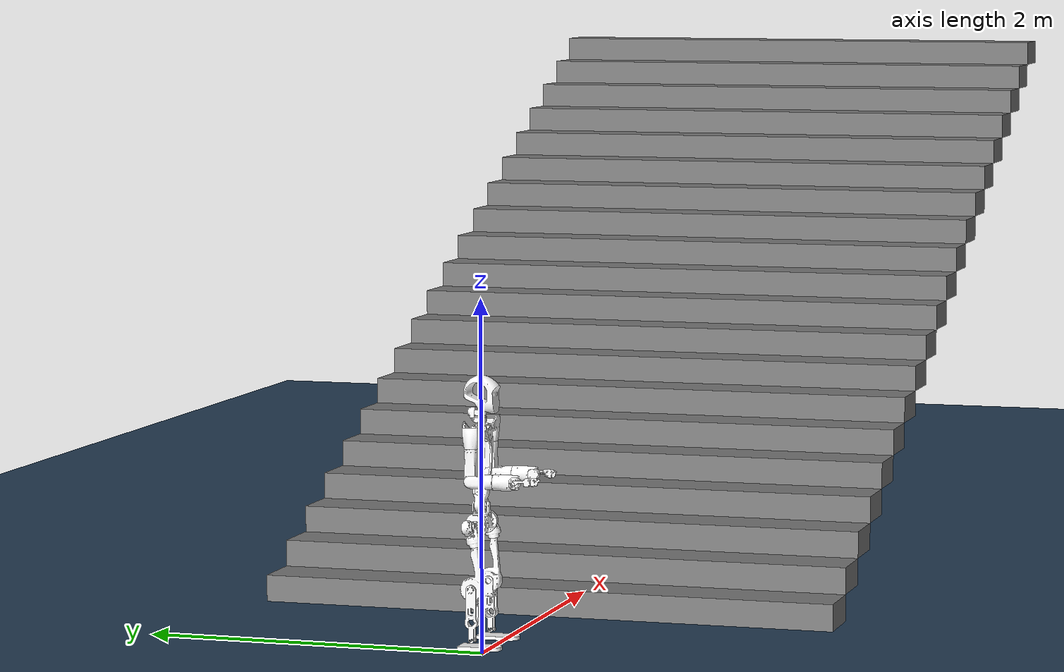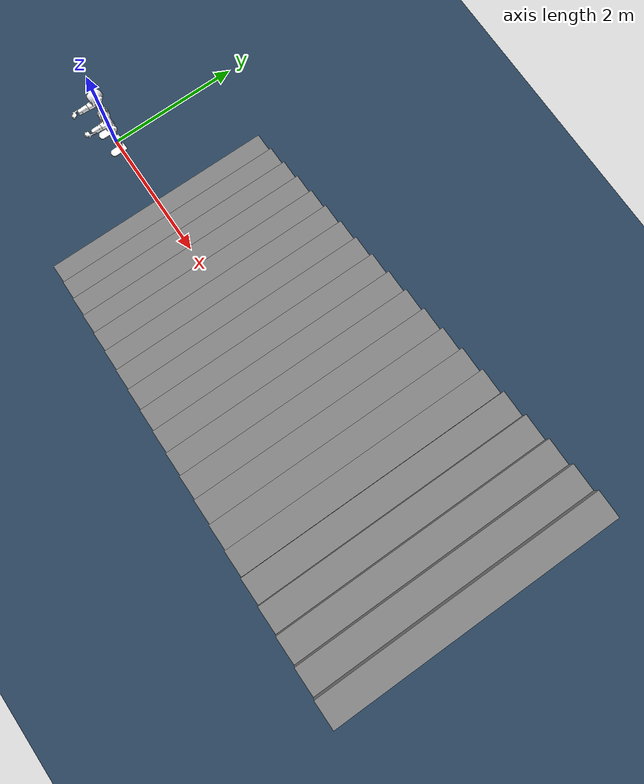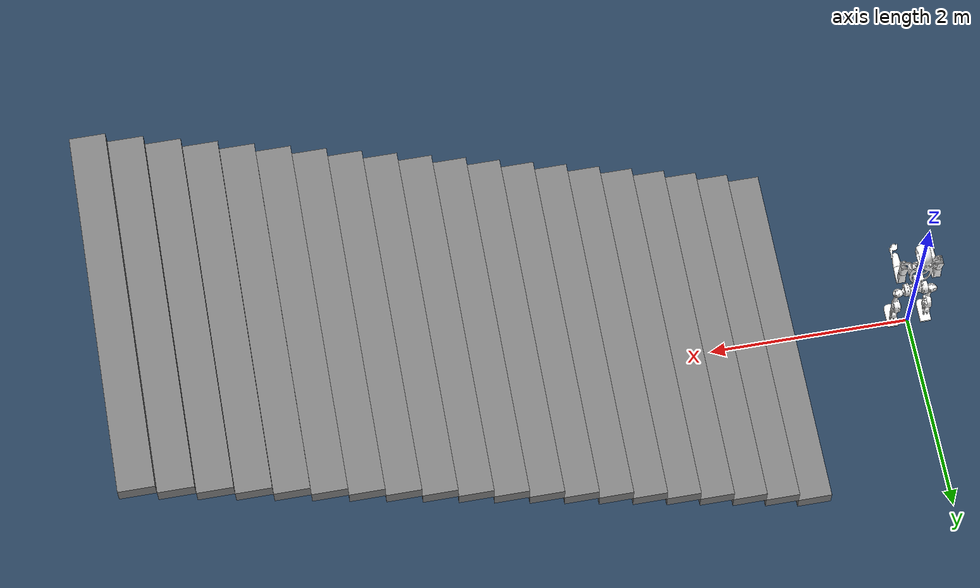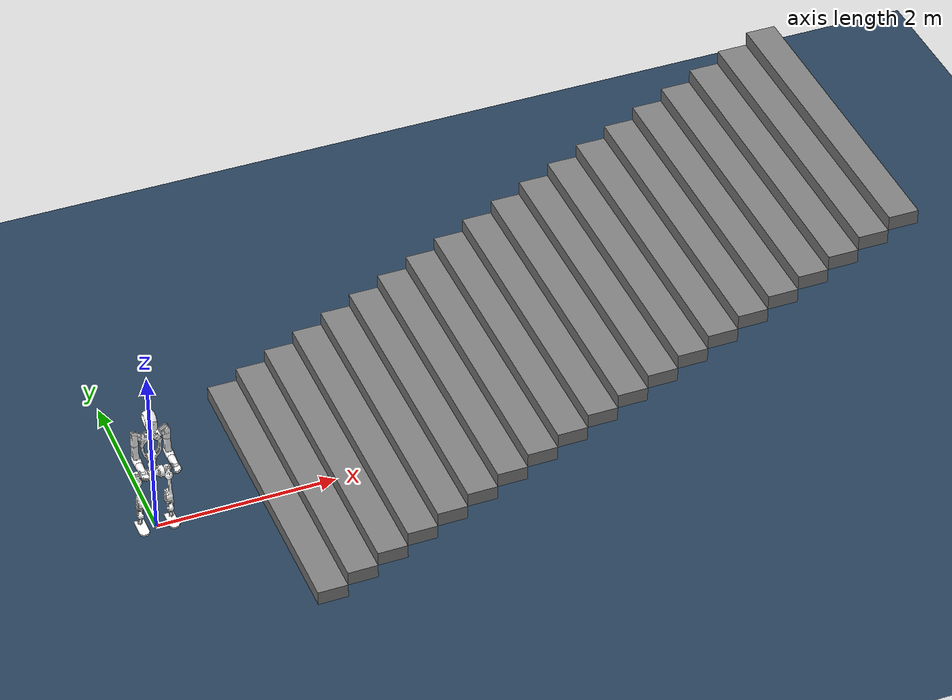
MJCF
<?xml version="1.0" encoding="utf-8"?>
<mujoco model="Taks_T1 scene">
  <include file="Taks_T1.xml" />
  <statistic center="1.0 0.7 1.0" extent="0.8" />

  <visual>
    <headlight diffuse="0.6 0.6 0.6" ambient="0.1 0.1 0.1" specular="0.9 0.9 0.9" />
    <rgba haze="0.15 0.25 0.35 1" />
    <global azimuth="-140" elevation="-20" />
  </visual>

  <asset>
    <texture type="skybox" builtin="flat" rgb1="0 0 0" rgb2="0 0 0" width="512" height="3072" />
    <texture type="2d" name="groundplane" builtin="checker" mark="edge" rgb1="0.2 0.3 0.4" rgb2="0.1 0.2 0.3" markrgb="0.8 0.8 0.8" width="300" height="300" />
    <material name="groundplane" texture="groundplane" texuniform="true" texrepeat="5 5" reflectance="0.2" />
  </asset>

  <worldbody>
    <light pos="1 0 3.5" dir="0 0 -1" directional="true" />
    <geom name="floor" size="0 0 0.05" type="plane" material="groundplane" />
    <geom pos="1.33 0.0 0.08" type="box" size="0.165 1.75 0.08" quat="1.0 0.0 0.0 0.0" /><geom pos="1.6600000000000001 0.0 0.24" type="box" size="0.165 1.75 0.08" quat="1.0 0.0 0.0 0.0" /><geom pos="1.99 0.0 0.4" type="box" size="0.165 1.75 0.08" quat="1.0 0.0 0.0 0.0" /><geom pos="2.3200000000000003 0.0 0.56" type="box" size="0.165 1.75 0.08" quat="1.0 0.0 0.0 0.0" /><geom pos="2.6500000000000004 0.0 0.7200000000000001" type="box" size="0.165 1.75 0.08" quat="1.0 0.0 0.0 0.0" /><geom pos="2.9800000000000004 0.0 0.8800000000000001" type="box" size="0.165 1.75 0.08" quat="1.0 0.0 0.0 0.0" /><geom pos="3.31 0.0 1.04" type="box" size="0.165 1.75 0.08" quat="1.0 0.0 0.0 0.0" /><geom pos="3.64 0.0 1.2" type="box" size="0.165 1.75 0.08" quat="1.0 0.0 0.0 0.0" /><geom pos="3.97 0.0 1.3599999999999999" type="box" size="0.165 1.75 0.08" quat="1.0 0.0 0.0 0.0" /><geom pos="4.300000000000001 0.0 1.5199999999999998" type="box" size="0.165 1.75 0.08" quat="1.0 0.0 0.0 0.0" /><geom pos="4.630000000000001 0.0 1.6799999999999997" type="box" size="0.165 1.75 0.08" quat="1.0 0.0 0.0 0.0" /><geom pos="4.960000000000001 0.0 1.8399999999999996" type="box" size="0.165 1.75 0.08" quat="1.0 0.0 0.0 0.0" /><geom pos="5.29 0.0 1.9999999999999996" type="box" size="0.165 1.75 0.08" quat="1.0 0.0 0.0 0.0" /><geom pos="5.62 0.0 2.1599999999999997" type="box" size="0.165 1.75 0.08" quat="1.0 0.0 0.0 0.0" /><geom pos="5.95 0.0 2.32" type="box" size="0.165 1.75 0.08" quat="1.0 0.0 0.0 0.0" /><geom pos="6.28 0.0 2.48" type="box" size="0.165 1.75 0.08" quat="1.0 0.0 0.0 0.0" /><geom pos="6.61 0.0 2.64" type="box" size="0.165 1.75 0.08" quat="1.0 0.0 0.0 0.0" /><geom pos="6.94 0.0 2.8000000000000003" type="box" size="0.165 1.75 0.08" quat="1.0 0.0 0.0 0.0" /><geom pos="7.2700000000000005 0.0 2.9600000000000004" type="box" size="0.165 1.75 0.08" quat="1.0 0.0 0.0 0.0" /><geom pos="7.6000000000000005 0.0 3.1200000000000006" type="box" size="0.165 1.75 0.08" quat="1.0 0.0 0.0 0.0" />
  </worldbody>
</mujoco>

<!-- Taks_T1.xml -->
<mujoco model="Taks_T1">
  <compiler angle="radian" meshdir="meshes"/>

  <asset>
    <!-- Leg meshes -->
    <mesh name="pelvis" file="pelvis.STL"/>
    <mesh name="left_hip_pitch_link" file="left_hip_pitch_link.STL"/>
    <mesh name="left_hip_roll_link" file="left_hip_roll_link.STL"/>
    <mesh name="left_hip_yaw_link" file="left_hip_yaw_link.STL"/>
    <mesh name="left_knee_link" file="left_knee_link.STL"/>
    <mesh name="left_ankle_pitch_link" file="left_ankle_pitch_link.STL"/>
    <mesh name="left_ankle_roll_link" file="left_ankle_roll_link.STL"/>
    <mesh name="right_hip_pitch_link" file="right_hip_pitch_link.STL"/>
    <mesh name="right_hip_roll_link" file="right_hip_roll_link.STL"/>
    <mesh name="right_hip_yaw_link" file="right_hip_yaw_link.STL"/>
    <mesh name="right_knee_link" file="right_knee_link.STL"/>
    <mesh name="right_ankle_pitch_link" file="right_ankle_pitch_link.STL"/>
    <mesh name="right_ankle_roll_link" file="right_ankle_roll_link.STL"/>

    <!-- Upper body meshes -->
    <mesh name="waist_yaw_link" file="waist_yaw_link.STL"/>
    <mesh name="waist_roll_link" file="waist_roll_link.STL"/>
    <mesh name="torso_link" file="waist_pitch_link.STL"/>
    <mesh name="left_shoulder_pitch_link" file="left_shoulder_pitch_link.STL"/>
    <mesh name="left_shoulder_roll_link" file="left_shoulder_roll_link.STL"/>
    <mesh name="left_shoulder_yaw_link" file="left_shoulder_yaw_link.STL"/>
    <mesh name="left_elbow_link" file="left_elbow_link.STL"/>
    <mesh name="left_wrist_roll_link" file="left_wrist_roll_link.STL"/>
    <mesh name="left_wrist_yaw_link" file="left_wrist_yaw_link.STL"/>
    <mesh name="left_wrist_pitch_link" file="left_wrist_pitch_link.STL"/>
    <mesh name="right_shoulder_pitch_link" file="right_shoulder_pitch_link.STL"/>
    <mesh name="right_shoulder_roll_link" file="right_shoulder_roll_link.STL"/>
    <mesh name="right_shoulder_yaw_link" file="right_shoulder_yaw_link.STL"/>
    <mesh name="right_elbow_link" file="right_elbow_link.STL"/>
    <mesh name="right_wrist_roll_link" file="right_wrist_roll_link.STL"/>
    <mesh name="right_wrist_yaw_link" file="right_wrist_yaw_link.STL"/>
    <mesh name="right_wrist_pitch_link" file="right_wrist_pitch_link.STL"/>
    <mesh name="neck_yaw_link" file="neck_yaw_link.STL"/>
    <mesh name="neck_roll_link" file="neck_roll_link.STL"/>
    <mesh name="neck_pitch_link" file="neck_pitch_link.STL"/>
  </asset>

  <worldbody>
    <body name="pelvis" pos="0 0 0.793">
      <inertial pos="0 -0.05192 0" mass="3.2" diaginertia="0.0166667 0.0201067 0.0247733"/>
      <joint name="floating_base_joint" type="free" limited="false" actuatorfrclimited="false"/>
      <geom type="mesh" contype="0" conaffinity="0" group="1" density="0" rgba="1 1 1 1" mesh="pelvis"/>
      <geom type="mesh" contype="2" conaffinity="1" rgba="1 1 1 1" mesh="pelvis"/>
      <site name="imu_in_pelvis" size="0.01" pos="0 -0.05192 0"/>

      <!-- Left Leg -->
      <body name="left_hip_pitch_link" pos="0.115 0 -0.0523" quat="0.707107 0 0 -0.707107">
        <inertial pos="-0.02022 0.04885 -0.00359" mass="0.685" diaginertia="0.000776333 0.000570833 0.000936167"/>
        <joint name="left_hip_pitch_joint" pos="0 0 0" axis="0 1 0" range="-2.5307 2.8798" actuatorfrcrange="-120 120"/>
        <geom type="mesh" contype="0" conaffinity="0" group="1" density="0" rgba="1 1 1 1" mesh="left_hip_pitch_link"/>
        <geom type="mesh" rgba="1 1 1 1" mesh="left_hip_pitch_link"/>

        <body name="left_hip_roll_link" pos="0.007945 0.053348 0.001351" quat="0.996195 0 -0.087156 0">
          <inertial pos="-0.00668 -0.00027 -0.0695" mass="0.93" diaginertia="0.001612 0.001612 0.000992"/>
          <joint name="left_hip_roll_joint" pos="0 0 0" axis="1 0 0" range="-0.5236 2.9671" actuatorfrcrange="-97 97"/>
          <geom type="mesh" rgba="1 1 1 1" mesh="left_hip_roll_link"/>

          <body name="left_hip_yaw_link" pos="-0.008293 0 -0.10937">
            <inertial pos="-0.048416 -0.008192 -0.200621" mass="1.74" diaginertia="0.014616 0.014616 0.003132"/>
            <joint name="left_hip_yaw_joint" pos="0 0 0" axis="0 0 1" range="-2.7576 2.7576" actuatorfrcrange="-97 97"/>
            <geom type="mesh" rgba="1 1 1 1" mesh="left_hip_yaw_link"/>

            <body name="left_knee_link" pos="-0.060138 0.016849 -0.23297" quat="0.996195 0 0.087156 0">
              <inertial pos="0 -0.02480 -0.115572" mass="0.63" diaginertia="0.004977 0.004977 0.000504"/>
              <joint name="left_knee_joint" pos="0 0 0" axis="0 1 0" range="-0.087267 2.8798" actuatorfrcrange="-120 120"/>
              <geom type="mesh" rgba="1 1 1 1" mesh="left_knee_link"/>

              <body name="left_ankle_pitch_link" pos="0 -0.015197 -0.28503">
                <inertial pos="0.019984 0 0" mass="0.001837" diaginertia="1.6533e-07 1.6533e-07 1.6533e-07"/>
                <joint name="left_ankle_pitch_joint" pos="0 0 0" axis="0 1 0" range="-0.87267 0.5236" actuatorfrcrange="-27 27"/>
                <geom type="mesh" rgba="1 1 1 1" mesh="left_ankle_pitch_link"/>

                <body name="left_ankle_roll_link" pos="0.02 0 0">
                  <inertial pos="0.025052 -0.005381 -0.04" mass="0.56" diaginertia="0.000415333 0.00146533 0.00164733"/>
                  <joint name="left_ankle_roll_joint" pos="0 0 0" axis="1 0 0" range="-0.2618 0.2618" actuatorfrcrange="-27 27"/>
                  <geom type="mesh" contype="0" conaffinity="0" group="1" density="0" rgba="1 1 1 1" mesh="left_ankle_roll_link"/>
                  <geom size="0.005" pos="-0.05 0.025 -0.045" rgba="1 1 1 1"/>
                  <geom size="0.005" pos="-0.05 -0.025 -0.045" rgba="1 1 1 1"/>
                  <geom size="0.005" pos="0.12 0.03 -0.045" rgba="1 1 1 1"/>
                  <geom size="0.005" pos="0.12 -0.03 -0.045" rgba="1 1 1 1"/>
                </body>
              </body>
            </body>
          </body>
        </body>
      </body>

      <!-- Right Leg -->
      <body name="right_hip_pitch_link" pos="-0.115 0 -0.0523" quat="0.707107 0 0 -0.707107">
        <inertial pos="-0.02022 -0.04886 -0.00359" mass="0.685" diaginertia="0.000776333 0.000570833 0.000936167"/>
        <joint name="right_hip_pitch_joint" pos="0 0 0" axis="0 1 0" range="-2.5307 2.8798" actuatorfrcrange="-120 120"/>
        <geom type="mesh" contype="0" conaffinity="0" group="1" density="0" rgba="1 1 1 1" mesh="right_hip_pitch_link"/>
        <geom type="mesh" rgba="1 1 1 1" mesh="right_hip_pitch_link"/>

        <body name="right_hip_roll_link" pos="0.007945 -0.053348 0.001351" quat="0.996195 0 -0.087156 0">
          <inertial pos="-0.00668 0.00027 -0.0695" mass="0.93" diaginertia="0.001612 0.001612 0.000992"/>
          <joint name="right_hip_roll_joint" pos="0 0 0" axis="1 0 0" range="-2.9671 0.5236" actuatorfrcrange="-97 97"/>
          <geom type="mesh" rgba="1 1 1 1" mesh="right_hip_roll_link"/>

          <body name="right_hip_yaw_link" pos="-0.008293 0 -0.10937">
            <inertial pos="-0.04842 0.008194 -0.200625" mass="1.74" diaginertia="0.014616 0.014616 0.003132"/>
            <joint name="right_hip_yaw_joint" pos="0 0 0" axis="0 0 1" range="-2.7576 2.7576" actuatorfrcrange="-97 97"/>
            <geom type="mesh" rgba="1 1 1 1" mesh="right_hip_yaw_link"/>

            <body name="right_knee_link" pos="-0.060138 -0.016849 -0.23297" quat="0.996195 0 0.087156 0">
              <inertial pos="0 0.02480 -0.115573" mass="0.63" diaginertia="0.004977 0.004977 0.000504"/>
              <joint name="right_knee_joint" pos="0 0 0" axis="0 1 0" range="-0.087267 2.8798" actuatorfrcrange="-120 120"/>
              <geom type="mesh" rgba="1 1 1 1" mesh="right_knee_link"/>

              <body name="right_ankle_pitch_link" pos="0 0.015197 -0.28503">
                <inertial pos="0.019984 0 0" mass="0.001837" diaginertia="1.6533e-07 1.6533e-07 1.6533e-07"/>
                <joint name="right_ankle_pitch_joint" pos="0 0 0" axis="0 1 0" range="-0.87267 0.5236" actuatorfrcrange="-27 27"/>
                <geom type="mesh" rgba="1 1 1 1" mesh="right_ankle_pitch_link"/>

                <body name="right_ankle_roll_link" pos="0.02 0 0">
                  <inertial pos="0.025052 0.005381 -0.04" mass="0.56" diaginertia="0.000415333 0.00146533 0.00164733"/>
                  <joint name="right_ankle_roll_joint" pos="0 0 0" axis="1 0 0" range="-0.2618 0.2618" actuatorfrcrange="-27 27"/>
                  <geom type="mesh" contype="0" conaffinity="0" group="1" density="0" rgba="1 1 1 1" mesh="right_ankle_roll_link"/>
                  <geom size="0.005" pos="-0.05 0.025 -0.045" rgba="1 1 1 1"/>
                  <geom size="0.005" pos="-0.05 -0.025 -0.045" rgba="1 1 1 1"/>
                  <geom size="0.005" pos="0.12 0.03 -0.045" rgba="1 1 1 1"/>
                  <geom size="0.005" pos="0.12 -0.03 -0.045" rgba="1 1 1 1"/>
                </body>
              </body>
            </body>
          </body>
        </body>
      </body>

      <!-- Upper Body -->
      <body name="waist_yaw_link" quat="0.707107 0 0 -0.707107">
        <inertial pos="0.000694 0.000037 0.023535" mass="0.79" diaginertia="0.00073075 0.00073075 0.0009875"/>
        <joint name="waist_yaw_joint" pos="0 0 0" axis="0 0 1" range="-2.618 2.618" actuatorfrcrange="-97 97"/>
        <geom type="mesh" contype="0" conaffinity="0" group="1" density="0" rgba="1 1 1 1" mesh="waist_yaw_link"/>
        <geom type="mesh" contype="2" conaffinity="1" rgba="1 1 1 1" mesh="waist_yaw_link"/>

        <body name="waist_roll_link" pos="0.03813 0.000037 0.050906">
          <inertial pos="-0.03647 0.001918 0.039525" mass="1.56" diaginertia="0.0026 0.0026 0.0026"/>
          <joint name="waist_roll_joint" pos="0 0 0" axis="1 0 0" range="-0.52 0.52" actuatorfrcrange="-97 97"/>
          <geom type="mesh" contype="0" conaffinity="0" group="1" density="0" rgba="1 1 1 1" mesh="waist_roll_link"/>
          <geom type="mesh" contype="2" conaffinity="1" rgba="1 1 1 1" mesh="waist_roll_link"/>

          <body name="torso_link" pos="-0.03813 -0.032925 0.079963">
            <inertial pos="-0.000232 0.028443 0.216034" mass="2.01" diaginertia="0.041875 0.0372688 0.0255437"/>
            <joint name="waist_pitch_joint" pos="0 0 0" axis="0 1 0" range="-0.52 0.52" actuatorfrcrange="-97 97"/>
            <geom type="mesh" contype="0" conaffinity="0" group="1" density="0" rgba="1 1 1 1" mesh="torso_link"/>
            <geom type="mesh" contype="2" conaffinity="1" rgba="1 1 1 1" mesh="torso_link"/>
            <site name="imu_in_torso" size="0.01" pos="0 0.028 0.216"/>

            <!-- Left Arm -->
            <body name="left_shoulder_pitch_link" pos="0 0.13582 0.33654" quat="0.965926 0.258819 0 0">
              <inertial pos="-0.003513 0.038593 0.000147" mass="0.24" diaginertia="0.000178 0.000122 0.0002"/>
              <joint name="left_shoulder_pitch_joint" pos="0 0 0" axis="0 1 0" range="-3 2" actuatorfrcrange="-27 27"/>
              <geom type="mesh" rgba="1 1 1 1" mesh="left_shoulder_pitch_link"/>

              <body name="left_shoulder_roll_link" pos="0.03476 0.0835 0.000425" quat="0.965926 -0.258819 0 0">
                <inertial pos="-0.034364 0.004091 -0.054537" mass="0.92" diaginertia="0.00157167 0.00178633 0.000766667"/>
                <joint name="left_shoulder_roll_joint" pos="0 0 0" axis="1 0 0" range="-0.2 2.2515" actuatorfrcrange="-27 27"/>
                <geom type="mesh" rgba="1 1 1 1" mesh="left_shoulder_roll_link"/>

                <body name="left_shoulder_yaw_link" pos="-0.034375 0 -0.12">
                  <inertial pos="0.000365 -0.000072 -0.086229" mass="0.625" diaginertia="0.0019375 0.0019375 0.0005"/>
                  <joint name="left_shoulder_yaw_joint" pos="0 0 0" axis="0 0 1" range="-2.58 2.58" actuatorfrcrange="-27 27"/>
                  <geom type="mesh" contype="8" conaffinity="1" rgba="1 1 1 1" mesh="left_shoulder_yaw_link"/>

                  <body name="left_elbow_link" pos="0.000364 0.029113 -0.18099">
                    <inertial pos="0.060258 -0.018902 -0.00551" mass="0.552" diaginertia="0.00094645 0.00094645 0.0003381"/>
                    <joint name="left_elbow_joint" pos="0 0 0" axis="0 1 0" range="-0.7 1.57" actuatorfrcrange="-27 27"/>
                    <geom type="mesh" contype="8" conaffinity="1" rgba="1 1 1 1" mesh="left_elbow_link"/>

                    <body name="left_wrist_roll_link" pos="0.13 -0.029125 0">
                      <inertial pos="0.059349 0 0.000843" mass="0.508" diaginertia="0.0007239 0.0007239 0.0002286"/>
                      <joint name="left_wrist_roll_joint" pos="0 0 0" axis="1 0 0" range="-2.67 2.67" actuatorfrcrange="-7 7"/>
                      <geom type="mesh" contype="8" conaffinity="1" rgba="1 1 1 1" mesh="left_wrist_roll_link"/>

                      <body name="left_wrist_yaw_link" pos="0.121 0 -0.0333">
                        <inertial pos="0 0.001805 0.034219" mass="0.37" diaginertia="0.000228167 0.000228167 0.000154167"/>
                        <joint name="left_wrist_yaw_joint" pos="0 0 0" axis="0 0 1" range="-0.9 0.9" actuatorfrcrange="-7 7"/>
                        <geom type="mesh" contype="8" conaffinity="1" rgba="1 1 1 1" mesh="left_wrist_yaw_link"/>

                        <body name="left_wrist_pitch_link" pos="0 0.022502 0.033299">
                          <inertial pos="0.076857 -0.017165 0.011311" mass="0.28" diaginertia="0.000121333 0.000270667 0.000317333"/>
                          <joint name="left_wrist_pitch_joint" pos="0 0 0" axis="0 1 0" range="-0.9 0.9" actuatorfrcrange="-7 7"/>
                          <geom type="mesh" contype="8" conaffinity="1" rgba="1 1 1 1" mesh="left_wrist_pitch_link"/>
                        </body>
                      </body>
                    </body>
                  </body>
                </body>
              </body>
            </body>

            <!-- Right Arm -->
            <body name="right_shoulder_pitch_link" pos="0 -0.069974 0.33654" quat="0.965926 -0.258819 0 0">
              <inertial pos="-0.003513 -0.038593 0.000147" mass="0.24" diaginertia="0.000178 0.000122 0.0002"/>
              <joint name="right_shoulder_pitch_joint" pos="0 0 0" axis="0 1 0" range="-2 2" actuatorfrcrange="-27 27"/>
              <geom type="mesh" rgba="1 1 1 1" mesh="right_shoulder_pitch_link"/>

              <body name="right_shoulder_roll_link" pos="0.02776 -0.0835 0.000425" quat="0.965926 0.258819 0 0">
                <inertial pos="-0.027363 -0.004095 -0.054537" mass="0.92" diaginertia="0.00157167 0.00178633 0.000766667"/>
                <joint name="right_shoulder_roll_joint" pos="0 0 0" axis="1 0 0" range="-2.2515 0.2" actuatorfrcrange="-27 27"/>
                <geom type="mesh" rgba="1 1 1 1" mesh="right_shoulder_roll_link"/>

                <body name="right_shoulder_yaw_link" pos="-0.027375 0 -0.12">
                  <inertial pos="0.000364 0.000066 -0.08623" mass="0.625" diaginertia="0.0019375 0.0019375 0.0005"/>
                  <joint name="right_shoulder_yaw_joint" pos="0 0 0" axis="0 0 1" range="-2.58 2.58" actuatorfrcrange="-27 27"/>
                  <geom type="mesh" contype="16" conaffinity="1" rgba="1 1 1 1" mesh="right_shoulder_yaw_link"/>

                  <body name="right_elbow_link" pos="0.000364 0.027375 -0.18099">
                    <inertial pos="0.060603 -0.027325 -0.005367" mass="0.552" diaginertia="0.00094645 0.00094645 0.0003381"/>
                    <joint name="right_elbow_joint" pos="0 0 0" axis="0 1 0" range="-0.7 1.57" actuatorfrcrange="-27 27"/>
                    <geom type="mesh" contype="16" conaffinity="1" rgba="1 1 1 1" mesh="right_elbow_link"/>

                    <body name="right_wrist_roll_link" pos="0.13 -0.027375 0">
                      <inertial pos="0.059331 0 0.000847" mass="0.508" diaginertia="0.0007239 0.0007239 0.0002286"/>
                      <joint name="right_wrist_roll_joint" pos="0 0 0" axis="1 0 0" range="-2.67 2.67" actuatorfrcrange="-7 7"/>
                      <geom type="mesh" contype="16" conaffinity="1" rgba="1 1 1 1" mesh="right_wrist_roll_link"/>

                      <body name="right_wrist_yaw_link" pos="0.121 0 -0.0333">
                        <inertial pos="0 -0.001803 0.034219" mass="0.37" diaginertia="0.000228167 0.000228167 0.000154167"/>
                        <joint name="right_wrist_yaw_joint" pos="0 0 0" axis="0 0 1" range="-0.9 0.9" actuatorfrcrange="-7 7"/>
                        <geom type="mesh" contype="16" conaffinity="1" rgba="1 1 1 1" mesh="right_wrist_yaw_link"/>

                        <body name="right_wrist_pitch_link" pos="0 -0.0225 0.0333">
                          <inertial pos="0.076858 0.017168 0.01131" mass="0.28" diaginertia="0.000121333 0.000270667 0.000317333"/>
                          <joint name="right_wrist_pitch_joint" pos="0 0 0" axis="0 1 0" range="-0.9 0.9" actuatorfrcrange="-7 7"/>
                          <geom type="mesh" contype="16" conaffinity="1" rgba="1 1 1 1" mesh="right_wrist_pitch_link"/>
                        </body>
                      </body>
                    </body>
                  </body>
                </body>
              </body>
            </body>

            <!-- Neck -->
            <body name="neck_yaw_link" pos="0 0.032906 0.37165" quat="1 0.000032 0 0">
              <inertial pos="-0.026005 0 0.044508" mass="0.4" diaginertia="0.000483333 0.000483333 0.000426667"/>
              <joint name="neck_yaw_joint" pos="0 0 0" axis="0 0 1" range="-1.57 1.57" actuatorfrcrange="-3 3"/>
              <geom type="mesh" contype="4" conaffinity="1" rgba="1 1 1 1" mesh="neck_yaw_link"/>

              <body name="neck_roll_link" pos="-0.0719 0 0.0708">
                <inertial pos="0.05706 -0.000635 0" mass="0.026" diaginertia="1.04e-05 1.04e-05 5.2e-06"/>
                <joint name="neck_roll_joint" pos="0 0 0" axis="1 0 0" range="-0.873 0.873" actuatorfrcrange="-3 3"/>
                <geom type="mesh" contype="4" conaffinity="1" rgba="1 1 1 1" mesh="neck_roll_link"/>

                <body name="neck_pitch_link" pos="0.0719 0.02095 0">
                  <inertial pos="0.009314 -0.020599 0.085269" mass="0.6" diaginertia="0.001845 0.001845 0.00144"/>
                  <joint name="neck_pitch_joint" pos="0 0 0" axis="0 1 0" range="-0.873 0.873" actuatorfrcrange="-3 3"/>
                  <geom type="mesh" contype="4" conaffinity="1" rgba="1 1 1 1" mesh="neck_pitch_link"/>
                </body>
              </body>
            </body>
          </body>
        </body>
      </body>
    </body>
  </worldbody>

  <actuator>
    <!-- Leg Actuators -->
    <motor name="left_hip_pitch_joint" joint="left_hip_pitch_joint"/>
    <motor name="left_hip_roll_joint" joint="left_hip_roll_joint"/>
    <motor name="left_hip_yaw_joint" joint="left_hip_yaw_joint"/>
    <motor name="left_knee_joint" joint="left_knee_joint"/>
    <motor name="left_ankle_pitch_joint" joint="left_ankle_pitch_joint"/>
    <motor name="left_ankle_roll_joint" joint="left_ankle_roll_joint"/>
    <motor name="right_hip_pitch_joint" joint="right_hip_pitch_joint"/>
    <motor name="right_hip_roll_joint" joint="right_hip_roll_joint"/>
    <motor name="right_hip_yaw_joint" joint="right_hip_yaw_joint"/>
    <motor name="right_knee_joint" joint="right_knee_joint"/>
    <motor name="right_ankle_pitch_joint" joint="right_ankle_pitch_joint"/>
    <motor name="right_ankle_roll_joint" joint="right_ankle_roll_joint"/>

    <!-- Waist Actuators -->
    <motor name="waist_yaw_joint" joint="waist_yaw_joint"/>
    <motor name="waist_roll_joint" joint="waist_roll_joint"/>
    <motor name="waist_pitch_joint" joint="waist_pitch_joint"/>

    <!-- Left Arm Actuators -->
    <motor name="left_shoulder_pitch_joint" joint="left_shoulder_pitch_joint"/>
    <motor name="left_shoulder_roll_joint" joint="left_shoulder_roll_joint"/>
    <motor name="left_shoulder_yaw_joint" joint="left_shoulder_yaw_joint"/>
    <motor name="left_elbow_joint" joint="left_elbow_joint"/>
    <motor name="left_wrist_roll_joint" joint="left_wrist_roll_joint"/>
    <motor name="left_wrist_yaw_joint" joint="left_wrist_yaw_joint"/>
    <motor name="left_wrist_pitch_joint" joint="left_wrist_pitch_joint"/>

    <!-- Right Arm Actuators -->
    <motor name="right_shoulder_pitch_joint" joint="right_shoulder_pitch_joint"/>
    <motor name="right_shoulder_roll_joint" joint="right_shoulder_roll_joint"/>
    <motor name="right_shoulder_yaw_joint" joint="right_shoulder_yaw_joint"/>
    <motor name="right_elbow_joint" joint="right_elbow_joint"/>
    <motor name="right_wrist_roll_joint" joint="right_wrist_roll_joint"/>
    <motor name="right_wrist_yaw_joint" joint="right_wrist_yaw_joint"/>
    <motor name="right_wrist_pitch_joint" joint="right_wrist_pitch_joint"/>

    <!-- Neck Actuators -->
    <motor name="neck_yaw_joint" joint="neck_yaw_joint"/>
    <motor name="neck_roll_joint" joint="neck_roll_joint"/>
    <motor name="neck_pitch_joint" joint="neck_pitch_joint"/>
  </actuator>

  <sensor>
    <gyro name="imu-torso-angular-velocity" site="imu_in_torso" noise="5e-4" cutoff="34.9"/>
    <accelerometer name="imu-torso-linear-acceleration" site="imu_in_torso" noise="1e-2" cutoff="157"/>
    <gyro name="imu-pelvis-angular-velocity" site="imu_in_pelvis" noise="5e-4" cutoff="34.9"/>
    <accelerometer name="imu-pelvis-linear-acceleration" site="imu_in_pelvis" noise="1e-2" cutoff="157"/>
  </sensor>
</mujoco>
